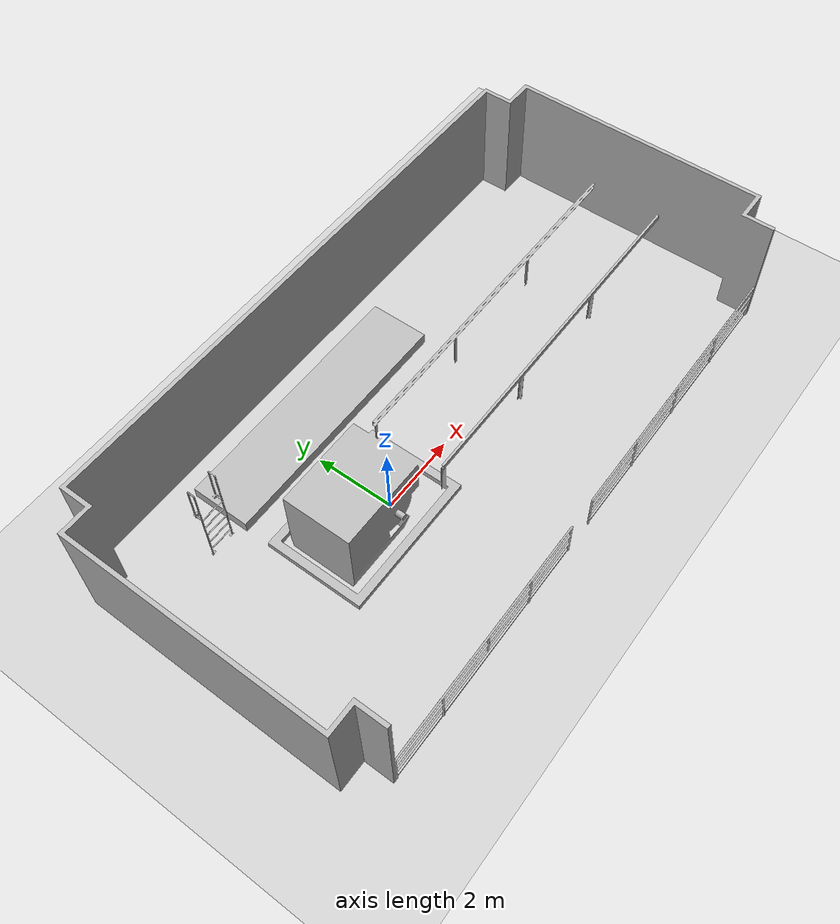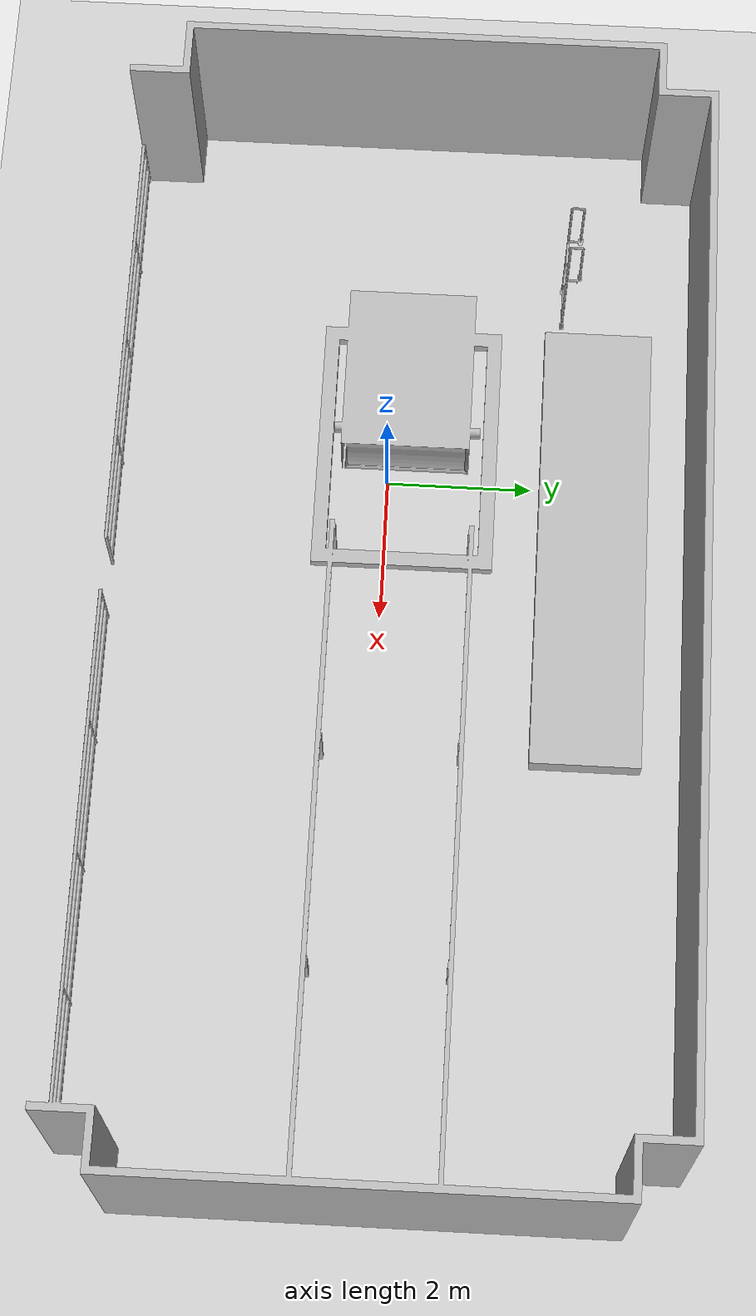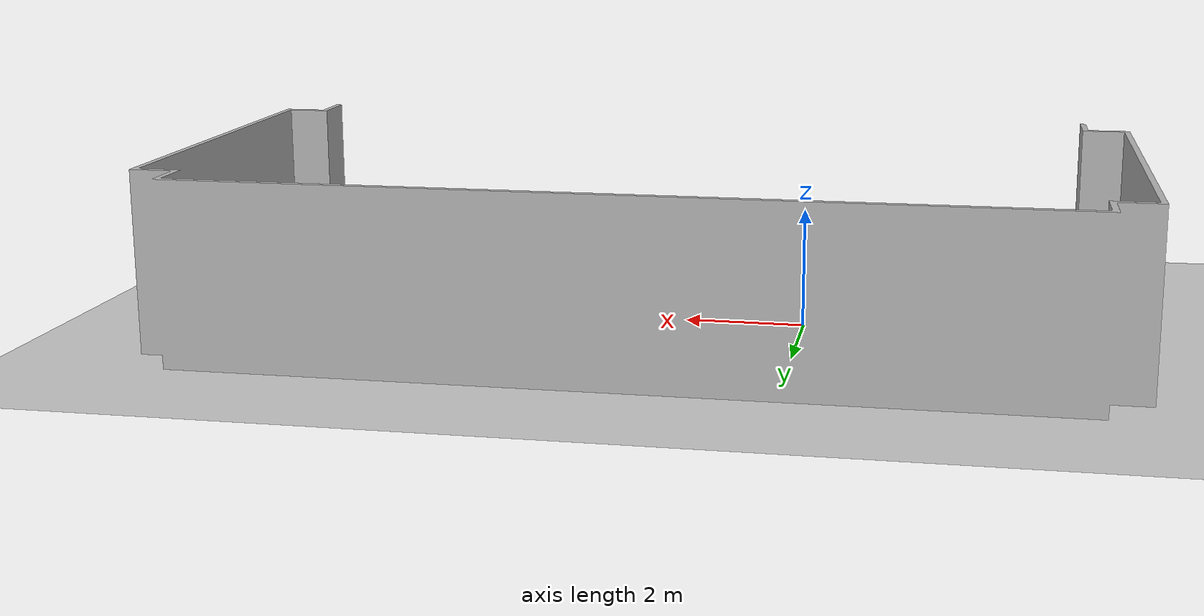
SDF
<sdf version="1.7">
 <world name="default">
  <light name="sun" type="directional">
   <pose>0 0 10 0 -0 0</pose>
   <diffuse>0.8 0.8 0.8 1</diffuse>
   <specular>0.2 0.2 0.2 1</specular>
   <attenuation>
    <range>1000</range>
    <constant>0.9</constant>
    <linear>0.01</linear>
    <quadratic>0.001</quadratic>
   </attenuation>
   <direction>-0.5 0.1 -0.9</direction>
   <spot><inner_angle>0</inner_angle><outer_angle>0</outer_angle><falloff>0</falloff></spot>
  </light>
  <model name="ground_plane">
   <static>1</static>
   <link name="link">
    <collision name="collision">
     <geometry><plane><normal>0 0 1</normal><size>100 100</size></plane></geometry>
     <surface>
      <contact><collide_bitmask>65535</collide_bitmask></contact>
      <friction><ode><mu>100</mu><mu2>50</mu2></ode></friction>
     </surface>
    </collision>
    <visual name="visual">
     <cast_shadows>0</cast_shadows>
     <geometry><plane><normal>0 0 1</normal><size>100 100</size></plane></geometry>
     <material>
      <script><uri>file://media/materials/scripts/gazebo.material</uri><name>Gazebo/Grey</name></script>
     </material>
    </visual>
   </link>
  </model>
  <gravity>0 0 -9.8</gravity>
  <magnetic_field>6e-06 2.3e-05 -4.2e-05</magnetic_field>
  <atmosphere type="adiabatic"/>
  <physics type="ode">
   <max_step_size>0.001</max_step_size>
   <real_time_factor>1</real_time_factor>
   <real_time_update_rate>1000</real_time_update_rate>
  </physics>
  <scene><ambient>0.4 0.4 0.4 1</ambient><background>0.7 0.7 0.7 1</background><shadows>1</shadows></scene>
  <spherical_coordinates>
   <surface_model>EARTH_WGS84</surface_model>
   <latitude_deg>0</latitude_deg>
   <longitude_deg>0</longitude_deg>
   <elevation>0</elevation>
   <heading_deg>0</heading_deg>
  </spherical_coordinates>
  <model name="test_site_gazebo">
   <link name="base_link">
    <inertial>
     <pose>1.7614 -0.66595 1.9185 0 -0 0</pose>
     <mass>14577</mass>
     <inertia>
      <ixx>81086</ixx>
      <ixy>14.025</ixy>
      <ixz>-0.0054252</ixz>
      <iyy>483890</iyy>
      <iyz>1.3021e-05</iyz>
      <izz>417960</izz>
     </inertia>
    </inertial>
    <collision name="base_link_collision">
     <geometry><mesh><scale>1 1 1</scale><uri>../meshes/base_link.STL</uri></mesh></geometry>
    </collision>
    <visual name="base_link_visual">
     <geometry><mesh><scale>1 1 1</scale><uri>../meshes/base_link.STL</uri></mesh></geometry>
    </visual>
   </link>
   <pose>0.002288 -0.012011 0.476132 -1.57079 -0 0.000569</pose>
  </model>
 </world>
</sdf>
